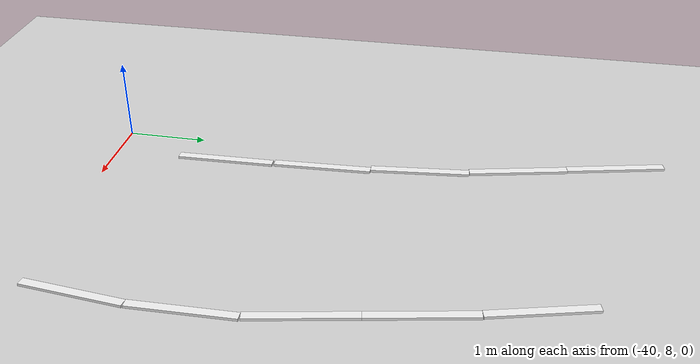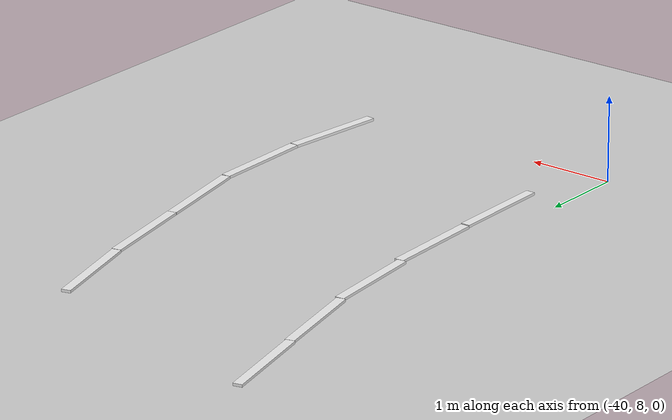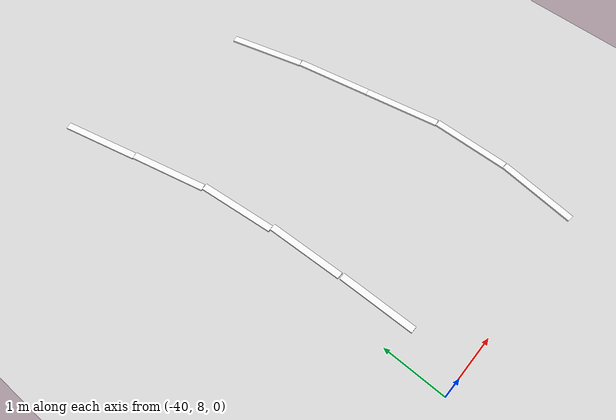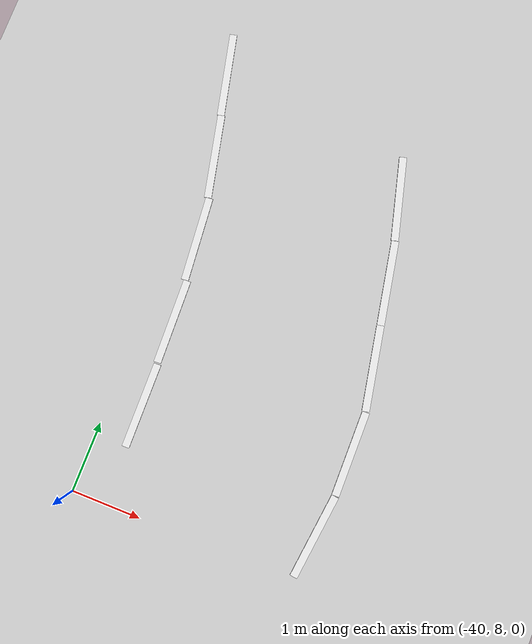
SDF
<sdf version="1.7">
 <world name="default">
  <model name="ground_plane">
   <static>1</static>
   <link name="link">
    <collision name="collision">
     <geometry><plane><normal>0 0 1</normal><size>100 100</size></plane></geometry>
     <surface><friction><ode><mu>100</mu><mu2>50</mu2></ode></friction></surface>
    </collision>
    <visual name="visual">
     <cast_shadows>0</cast_shadows>
     <geometry><plane><normal>0 0 1</normal><size>100 100</size></plane></geometry>
     <material>
      <script><uri>file://media/materials/scripts/gazebo.material</uri><name>Gazebo/Grey</name></script>
     </material>
    </visual>
   </link>
  </model>
  <model name="road_way_clone_clone_clone_0_clone_clone_clone_clone_0_clone_0_clone_0_clone_clone_clone_clone_clone_clone_clone_10_clone_2_clone_0_clone_1_clone_0_clone_0_clone_clone_0_clone_1_clone_clone_clone_clone_clone">
   <link name="link">
    <inertial>
     <mass>1</mass>
     <inertia>
      <ixx>0.166667</ixx>
      <ixy>0</ixy>
      <ixz>0</ixz>
      <iyy>0.166667</iyy>
      <iyz>0</iyz>
      <izz>0.166667</izz>
     </inertia>
    </inertial>
    <visual name="visual">
     <geometry><box><size>0.106644 1.22348 0.03129</size></box></geometry>
     <material>
      <script><name>Gazebo/White</name><uri>file://media/materials/scripts/gazebo.material</uri></script>
      <shader type="pixel"><normal_map>__default__</normal_map></shader>
      <ambient>1 1 1 1</ambient>
      <diffuse>1 1 1 1</diffuse>
      <specular>0 0 0 1</specular>
      <emissive>0 0 0 1</emissive>
     </material>
    </visual>
    <collision name="collision">
     <geometry><box><size>0.10644 1.22348 0.03129</size></box></geometry>
     <surface>
      <friction>
       <ode><mu>1</mu><mu2>1</mu2><fdir1>0 0 0</fdir1><slip1>0</slip1><slip2>0</slip2></ode>
       <torsional>
        <coefficient>1</coefficient>
        <patch_radius>0</patch_radius>
        <surface_radius>0</surface_radius>
        <use_patch_radius>1</use_patch_radius>
        <ode><slip>0</slip></ode>
       </torsional>
      </friction>
      <bounce><restitution_coefficient>0</restitution_coefficient><threshold>1e+06</threshold></bounce>
      <contact>
       <collide_without_contact>0</collide_without_contact>
       <collide_without_contact_bitmask>1</collide_without_contact_bitmask>
       <collide_bitmask>1</collide_bitmask>
       <ode>
        <soft_cfm>0</soft_cfm>
        <soft_erp>0.2</soft_erp>
        <kp>1e+13</kp>
        <kd>1</kd>
        <max_vel>0.01</max_vel>
        <min_depth>0</min_depth>
       </ode>
       <bullet>
        <split_impulse>1</split_impulse>
        <split_impulse_penetration_threshold>-0.01</split_impulse_penetration_threshold>
        <soft_cfm>0</soft_cfm>
        <soft_erp>0.2</soft_erp>
        <kp>1e+13</kp>
        <kd>1</kd>
       </bullet>
      </contact>
     </surface>
    </collision>
   </link>
   <static>0</static>
   <pose>-40.2197 14.3013 0.015638 1.1e-05 -0 -2.91411</pose>
  </model>
  <model name="road_way_clone_clone_clone_0_clone_clone_clone_clone_0_clone_0_clone_0_clone_clone_clone_clone_clone_clone_clone_10_clone_2_clone_0_clone_1_clone_0_clone_0_clone_clone_0_clone_1_clone_clone_clone_clone_clone_0_clone">
   <link name="link">
    <inertial>
     <mass>1</mass>
     <inertia>
      <ixx>0.166667</ixx>
      <ixy>0</ixy>
      <ixz>0</ixz>
      <iyy>0.166667</iyy>
      <iyz>0</iyz>
      <izz>0.166667</izz>
     </inertia>
    </inertial>
    <visual name="visual">
     <geometry><box><size>0.106644 1.22348 0.03129</size></box></geometry>
     <material>
      <script><name>Gazebo/White</name><uri>file://media/materials/scripts/gazebo.material</uri></script>
      <shader type="pixel"><normal_map>__default__</normal_map></shader>
      <ambient>1 1 1 1</ambient>
      <diffuse>1 1 1 1</diffuse>
      <specular>0 0 0 1</specular>
      <emissive>0 0 0 1</emissive>
     </material>
    </visual>
    <collision name="collision">
     <geometry><box><size>0.10644 1.22348 0.03129</size></box></geometry>
     <surface>
      <friction>
       <ode><mu>1</mu><mu2>1</mu2><fdir1>0 0 0</fdir1><slip1>0</slip1><slip2>0</slip2></ode>
       <torsional>
        <coefficient>1</coefficient>
        <patch_radius>0</patch_radius>
        <surface_radius>0</surface_radius>
        <use_patch_radius>1</use_patch_radius>
        <ode><slip>0</slip></ode>
       </torsional>
      </friction>
      <bounce><restitution_coefficient>0</restitution_coefficient><threshold>1e+06</threshold></bounce>
      <contact>
       <collide_without_contact>0</collide_without_contact>
       <collide_without_contact_bitmask>1</collide_without_contact_bitmask>
       <collide_bitmask>1</collide_bitmask>
       <ode>
        <soft_cfm>0</soft_cfm>
        <soft_erp>0.2</soft_erp>
        <kp>1e+13</kp>
        <kd>1</kd>
        <max_vel>0.01</max_vel>
        <min_depth>0</min_depth>
       </ode>
       <bullet>
        <split_impulse>1</split_impulse>
        <split_impulse_penetration_threshold>-0.01</split_impulse_penetration_threshold>
        <soft_cfm>0</soft_cfm>
        <soft_erp>0.2</soft_erp>
        <kp>1e+13</kp>
        <kd>1</kd>
       </bullet>
      </contact>
     </surface>
    </collision>
   </link>
   <static>0</static>
   <pose>-39.9366 13.1106 0.015638 1.1e-05 -0 -2.91982</pose>
  </model>
  <model name="road_way_clone_clone_clone_0_clone_clone_clone_clone_0_clone_0_clone_0_clone_clone_clone_clone_clone_clone_clone_10_clone_2_clone_0_clone_1_clone_0_clone_0_clone_clone_0_clone_1_clone_clone_clone_clone_clone_0">
   <link name="link">
    <inertial>
     <mass>1</mass>
     <inertia>
      <ixx>0.166667</ixx>
      <ixy>0</ixy>
      <ixz>0</ixz>
      <iyy>0.166667</iyy>
      <iyz>0</iyz>
      <izz>0.166667</izz>
     </inertia>
    </inertial>
    <visual name="visual">
     <geometry><box><size>0.106644 1.22348 0.03129</size></box></geometry>
     <material>
      <script><name>Gazebo/White</name><uri>file://media/materials/scripts/gazebo.material</uri></script>
      <shader type="pixel"><normal_map>__default__</normal_map></shader>
      <ambient>1 1 1 1</ambient>
      <diffuse>1 1 1 1</diffuse>
      <specular>0 0 0 1</specular>
      <emissive>0 0 0 1</emissive>
     </material>
    </visual>
    <collision name="collision">
     <geometry><box><size>0.10644 1.22348 0.03129</size></box></geometry>
     <surface>
      <friction>
       <ode><mu>1</mu><mu2>1</mu2><fdir1>0 0 0</fdir1><slip1>0</slip1><slip2>0</slip2></ode>
       <torsional>
        <coefficient>1</coefficient>
        <patch_radius>0</patch_radius>
        <surface_radius>0</surface_radius>
        <use_patch_radius>1</use_patch_radius>
        <ode><slip>0</slip></ode>
       </torsional>
      </friction>
      <bounce><restitution_coefficient>0</restitution_coefficient><threshold>1e+06</threshold></bounce>
      <contact>
       <collide_without_contact>0</collide_without_contact>
       <collide_without_contact_bitmask>1</collide_without_contact_bitmask>
       <collide_bitmask>1</collide_bitmask>
       <ode>
        <soft_cfm>0</soft_cfm>
        <soft_erp>0.2</soft_erp>
        <kp>1e+13</kp>
        <kd>1</kd>
        <max_vel>0.01</max_vel>
        <min_depth>0</min_depth>
       </ode>
       <bullet>
        <split_impulse>1</split_impulse>
        <split_impulse_penetration_threshold>-0.01</split_impulse_penetration_threshold>
        <soft_cfm>0</soft_cfm>
        <soft_erp>0.2</soft_erp>
        <kp>1e+13</kp>
        <kd>1</kd>
       </bullet>
      </contact>
     </surface>
    </collision>
   </link>
   <static>0</static>
   <pose>-37.2506 13.5066 0.015618 -1.3e-05 1e-06 -2.88082</pose>
  </model>
  <model name="road_way_clone_clone_clone_0_clone_clone_clone_clone_0_clone_0_clone_0_clone_clone_clone_clone_clone_clone_clone_10_clone_2_clone_0_clone_1_clone_0_clone_0_clone_clone_0_clone_1_clone_clone_clone_clone_clone_0_clone_clone">
   <link name="link">
    <inertial>
     <mass>1</mass>
     <inertia>
      <ixx>0.166667</ixx>
      <ixy>0</ixy>
      <ixz>0</ixz>
      <iyy>0.166667</iyy>
      <iyz>0</iyz>
      <izz>0.166667</izz>
     </inertia>
    </inertial>
    <visual name="visual">
     <geometry><box><size>0.106644 1.22348 0.03129</size></box></geometry>
     <material>
      <script><name>Gazebo/White</name><uri>file://media/materials/scripts/gazebo.material</uri></script>
      <shader type="pixel"><normal_map>__default__</normal_map></shader>
      <ambient>1 1 1 1</ambient>
      <diffuse>1 1 1 1</diffuse>
      <specular>0 0 0 1</specular>
      <emissive>0 0 0 1</emissive>
     </material>
    </visual>
    <collision name="collision">
     <geometry><box><size>0.10644 1.22348 0.03129</size></box></geometry>
     <surface>
      <friction>
       <ode><mu>1</mu><mu2>1</mu2><fdir1>0 0 0</fdir1><slip1>0</slip1><slip2>0</slip2></ode>
       <torsional>
        <coefficient>1</coefficient>
        <patch_radius>0</patch_radius>
        <surface_radius>0</surface_radius>
        <use_patch_radius>1</use_patch_radius>
        <ode><slip>0</slip></ode>
       </torsional>
      </friction>
      <bounce><restitution_coefficient>0</restitution_coefficient><threshold>1e+06</threshold></bounce>
      <contact>
       <collide_without_contact>0</collide_without_contact>
       <collide_without_contact_bitmask>1</collide_without_contact_bitmask>
       <collide_bitmask>1</collide_bitmask>
       <ode>
        <soft_cfm>0</soft_cfm>
        <soft_erp>0.2</soft_erp>
        <kp>1e+13</kp>
        <kd>1</kd>
        <max_vel>0.01</max_vel>
        <min_depth>0</min_depth>
       </ode>
       <bullet>
        <split_impulse>1</split_impulse>
        <split_impulse_penetration_threshold>-0.01</split_impulse_penetration_threshold>
        <soft_cfm>0</soft_cfm>
        <soft_erp>0.2</soft_erp>
        <kp>1e+13</kp>
        <kd>1</kd>
       </bullet>
      </contact>
     </surface>
    </collision>
   </link>
   <static>0</static>
   <pose>-39.7195 11.9033 0.015638 1.1e-05 -0 -3.0482</pose>
  </model>
  <model name="road_way_clone_clone_clone_0_clone_clone_clone_clone_0_clone_0_clone_0_clone_clone_clone_clone_clone_clone_clone_10_clone_2_clone_0_clone_1_clone_0_clone_0_clone_clone_0_clone_1_clone_clone_clone_clone_clone_0_clone_0">
   <link name="link">
    <inertial>
     <mass>1</mass>
     <inertia>
      <ixx>0.166667</ixx>
      <ixy>0</ixy>
      <ixz>0</ixz>
      <iyy>0.166667</iyy>
      <iyz>0</iyz>
      <izz>0.166667</izz>
     </inertia>
    </inertial>
    <visual name="visual">
     <geometry><box><size>0.106644 1.22348 0.03129</size></box></geometry>
     <material>
      <script><name>Gazebo/White</name><uri>file://media/materials/scripts/gazebo.material</uri></script>
      <shader type="pixel"><normal_map>__default__</normal_map></shader>
      <ambient>1 1 1 1</ambient>
      <diffuse>1 1 1 1</diffuse>
      <specular>0 0 0 1</specular>
      <emissive>0 0 0 1</emissive>
     </material>
    </visual>
    <collision name="collision">
     <geometry><box><size>0.10644 1.22348 0.03129</size></box></geometry>
     <surface>
      <friction>
       <ode><mu>1</mu><mu2>1</mu2><fdir1>0 0 0</fdir1><slip1>0</slip1><slip2>0</slip2></ode>
       <torsional>
        <coefficient>1</coefficient>
        <patch_radius>0</patch_radius>
        <surface_radius>0</surface_radius>
        <use_patch_radius>1</use_patch_radius>
        <ode><slip>0</slip></ode>
       </torsional>
      </friction>
      <bounce><restitution_coefficient>0</restitution_coefficient><threshold>1e+06</threshold></bounce>
      <contact>
       <collide_without_contact>0</collide_without_contact>
       <collide_without_contact_bitmask>1</collide_without_contact_bitmask>
       <collide_bitmask>1</collide_bitmask>
       <ode>
        <soft_cfm>0</soft_cfm>
        <soft_erp>0.2</soft_erp>
        <kp>1e+13</kp>
        <kd>1</kd>
        <max_vel>0.01</max_vel>
        <min_depth>0</min_depth>
       </ode>
       <bullet>
        <split_impulse>1</split_impulse>
        <split_impulse_penetration_threshold>-0.01</split_impulse_penetration_threshold>
        <soft_cfm>0</soft_cfm>
        <soft_erp>0.2</soft_erp>
        <kp>1e+13</kp>
        <kd>1</kd>
       </bullet>
      </contact>
     </surface>
    </collision>
   </link>
   <static>0</static>
   <pose>-36.9687 12.3132 0.015635 -1e-06 -1e-06 -2.95126</pose>
  </model>
  <model name="road_way_clone_clone_clone_0_clone_clone_clone_clone_0_clone_0_clone_0_clone_clone_clone_clone_clone_clone_clone_10_clone_2_clone_0_clone_1_clone_0_clone_0_clone_clone_0_clone_1_clone_clone_clone_clone_clone_0_clone_0_clone">
   <link name="link">
    <inertial>
     <mass>1</mass>
     <inertia>
      <ixx>0.166667</ixx>
      <ixy>0</ixy>
      <ixz>0</ixz>
      <iyy>0.166667</iyy>
      <iyz>0</iyz>
      <izz>0.166667</izz>
     </inertia>
    </inertial>
    <visual name="visual">
     <geometry><box><size>0.106644 1.22348 0.03129</size></box></geometry>
     <material>
      <script><name>Gazebo/White</name><uri>file://media/materials/scripts/gazebo.material</uri></script>
      <shader type="pixel"><normal_map>__default__</normal_map></shader>
      <ambient>1 1 1 1</ambient>
      <diffuse>1 1 1 1</diffuse>
      <specular>0 0 0 1</specular>
      <emissive>0 0 0 1</emissive>
     </material>
    </visual>
    <collision name="collision">
     <geometry><box><size>0.10644 1.22348 0.03129</size></box></geometry>
     <surface>
      <friction>
       <ode><mu>1</mu><mu2>1</mu2><fdir1>0 0 0</fdir1><slip1>0</slip1><slip2>0</slip2></ode>
       <torsional>
        <coefficient>1</coefficient>
        <patch_radius>0</patch_radius>
        <surface_radius>0</surface_radius>
        <use_patch_radius>1</use_patch_radius>
        <ode><slip>0</slip></ode>
       </torsional>
      </friction>
      <bounce><restitution_coefficient>0</restitution_coefficient><threshold>1e+06</threshold></bounce>
      <contact>
       <collide_without_contact>0</collide_without_contact>
       <collide_without_contact_bitmask>1</collide_without_contact_bitmask>
       <collide_bitmask>1</collide_bitmask>
       <ode>
        <soft_cfm>0</soft_cfm>
        <soft_erp>0.2</soft_erp>
        <kp>1e+13</kp>
        <kd>1</kd>
        <max_vel>0.01</max_vel>
        <min_depth>0</min_depth>
       </ode>
       <bullet>
        <split_impulse>1</split_impulse>
        <split_impulse_penetration_threshold>-0.01</split_impulse_penetration_threshold>
        <soft_cfm>0</soft_cfm>
        <soft_erp>0.2</soft_erp>
        <kp>1e+13</kp>
        <kd>1</kd>
       </bullet>
      </contact>
     </surface>
    </collision>
   </link>
   <static>0</static>
   <pose>-36.7382 11.1116 0.015638 -1.1e-05 -0 -2.95128</pose>
  </model>
  <model name="road_way_clone_clone_clone_0_clone_clone_clone_clone_0_clone_0_clone_0_clone_clone_clone_clone_clone_clone_clone_10_clone_2_clone_0_clone_1_clone_0_clone_0_clone_clone_0_clone_1_clone_clone_clone_clone_clone_0_clone_clone_clone">
   <link name="link">
    <inertial>
     <mass>1</mass>
     <inertia>
      <ixx>0.166667</ixx>
      <ixy>0</ixy>
      <ixz>0</ixz>
      <iyy>0.166667</iyy>
      <iyz>0</iyz>
      <izz>0.166667</izz>
     </inertia>
    </inertial>
    <visual name="visual">
     <geometry><box><size>0.106644 1.22348 0.03129</size></box></geometry>
     <material>
      <script><name>Gazebo/White</name><uri>file://media/materials/scripts/gazebo.material</uri></script>
      <shader type="pixel"><normal_map>__default__</normal_map></shader>
      <ambient>1 1 1 1</ambient>
      <diffuse>1 1 1 1</diffuse>
      <specular>0 0 0 1</specular>
      <emissive>0 0 0 1</emissive>
     </material>
    </visual>
    <collision name="collision">
     <geometry><box><size>0.10644 1.22348 0.03129</size></box></geometry>
     <surface>
      <friction>
       <ode><mu>1</mu><mu2>1</mu2><fdir1>0 0 0</fdir1><slip1>0</slip1><slip2>0</slip2></ode>
       <torsional>
        <coefficient>1</coefficient>
        <patch_radius>0</patch_radius>
        <surface_radius>0</surface_radius>
        <use_patch_radius>1</use_patch_radius>
        <ode><slip>0</slip></ode>
       </torsional>
      </friction>
      <bounce><restitution_coefficient>0</restitution_coefficient><threshold>1e+06</threshold></bounce>
      <contact>
       <collide_without_contact>0</collide_without_contact>
       <collide_without_contact_bitmask>1</collide_without_contact_bitmask>
       <collide_bitmask>1</collide_bitmask>
       <ode>
        <soft_cfm>0</soft_cfm>
        <soft_erp>0.2</soft_erp>
        <kp>1e+13</kp>
        <kd>1</kd>
        <max_vel>0.01</max_vel>
        <min_depth>0</min_depth>
       </ode>
       <bullet>
        <split_impulse>1</split_impulse>
        <split_impulse_penetration_threshold>-0.01</split_impulse_penetration_threshold>
        <soft_cfm>0</soft_cfm>
        <soft_erp>0.2</soft_erp>
        <kp>1e+13</kp>
        <kd>1</kd>
       </bullet>
      </contact>
     </surface>
    </collision>
   </link>
   <static>0</static>
   <pose>-39.6033 10.6832 0.015638 1.1e-05 -0 -3.10771</pose>
  </model>
  <model name="road_way_clone_clone_clone_0_clone_clone_clone_clone_0_clone_0_clone_0_clone_clone_clone_clone_clone_clone_clone_10_clone_2_clone_0_clone_1_clone_0_clone_0_clone_clone_0_clone_1_clone_clone_clone_clone_clone_0_clone_0_clone_clone">
   <link name="link">
    <inertial>
     <mass>1</mass>
     <inertia>
      <ixx>0.166667</ixx>
      <ixy>0</ixy>
      <ixz>0</ixz>
      <iyy>0.166667</iyy>
      <iyz>0</iyz>
      <izz>0.166667</izz>
     </inertia>
    </inertial>
    <visual name="visual">
     <geometry><box><size>0.106644 1.22348 0.03129</size></box></geometry>
     <material>
      <script><name>Gazebo/White</name><uri>file://media/materials/scripts/gazebo.material</uri></script>
      <shader type="pixel"><normal_map>__default__</normal_map></shader>
      <ambient>1 1 1 1</ambient>
      <diffuse>1 1 1 1</diffuse>
      <specular>0 0 0 1</specular>
      <emissive>0 0 0 1</emissive>
     </material>
    </visual>
    <collision name="collision">
     <geometry><box><size>0.10644 1.22348 0.03129</size></box></geometry>
     <surface>
      <friction>
       <ode><mu>1</mu><mu2>1</mu2><fdir1>0 0 0</fdir1><slip1>0</slip1><slip2>0</slip2></ode>
       <torsional>
        <coefficient>1</coefficient>
        <patch_radius>0</patch_radius>
        <surface_radius>0</surface_radius>
        <use_patch_radius>1</use_patch_radius>
        <ode><slip>0</slip></ode>
       </torsional>
      </friction>
      <bounce><restitution_coefficient>0</restitution_coefficient><threshold>1e+06</threshold></bounce>
      <contact>
       <collide_without_contact>0</collide_without_contact>
       <collide_without_contact_bitmask>1</collide_without_contact_bitmask>
       <collide_bitmask>1</collide_bitmask>
       <ode>
        <soft_cfm>0</soft_cfm>
        <soft_erp>0.2</soft_erp>
        <kp>1e+13</kp>
        <kd>1</kd>
        <max_vel>0.01</max_vel>
        <min_depth>0</min_depth>
       </ode>
       <bullet>
        <split_impulse>1</split_impulse>
        <split_impulse_penetration_threshold>-0.01</split_impulse_penetration_threshold>
        <soft_cfm>0</soft_cfm>
        <soft_erp>0.2</soft_erp>
        <kp>1e+13</kp>
        <kd>1</kd>
       </bullet>
      </contact>
     </surface>
    </collision>
   </link>
   <static>0</static>
   <pose>-36.6073 9.89127 0.015599 -1.1e-05 -1e-06 -3.13175</pose>
  </model>
  <model name="road_way_clone_clone_clone_0_clone_clone_clone_clone_0_clone_0_clone_0_clone_clone_clone_clone_clone_clone_clone_10_clone_2_clone_0_clone_1_clone_0_clone_0_clone_clone_0_clone_1_clone_clone_clone_clone_clone_0_clone_clone_clone_clone">
   <link name="link">
    <inertial>
     <mass>1</mass>
     <inertia>
      <ixx>0.166667</ixx>
      <ixy>0</ixy>
      <ixz>0</ixz>
      <iyy>0.166667</iyy>
      <iyz>0</iyz>
      <izz>0.166667</izz>
     </inertia>
    </inertial>
    <visual name="visual">
     <geometry><box><size>0.106644 1.22348 0.03129</size></box></geometry>
     <material>
      <script><name>Gazebo/White</name><uri>file://media/materials/scripts/gazebo.material</uri></script>
      <shader type="pixel"><normal_map>__default__</normal_map></shader>
      <ambient>1 1 1 1</ambient>
      <diffuse>1 1 1 1</diffuse>
      <specular>0 0 0 1</specular>
      <emissive>0 0 0 1</emissive>
     </material>
    </visual>
    <collision name="collision">
     <geometry><box><size>0.10644 1.22348 0.03129</size></box></geometry>
     <surface>
      <friction>
       <ode><mu>1</mu><mu2>1</mu2><fdir1>0 0 0</fdir1><slip1>0</slip1><slip2>0</slip2></ode>
       <torsional>
        <coefficient>1</coefficient>
        <patch_radius>0</patch_radius>
        <surface_radius>0</surface_radius>
        <use_patch_radius>1</use_patch_radius>
        <ode><slip>0</slip></ode>
       </torsional>
      </friction>
      <bounce><restitution_coefficient>0</restitution_coefficient><threshold>1e+06</threshold></bounce>
      <contact>
       <collide_without_contact>0</collide_without_contact>
       <collide_without_contact_bitmask>1</collide_without_contact_bitmask>
       <collide_bitmask>1</collide_bitmask>
       <ode>
        <soft_cfm>0</soft_cfm>
        <soft_erp>0.2</soft_erp>
        <kp>1e+13</kp>
        <kd>1</kd>
        <max_vel>0.01</max_vel>
        <min_depth>0</min_depth>
       </ode>
       <bullet>
        <split_impulse>1</split_impulse>
        <split_impulse_penetration_threshold>-0.01</split_impulse_penetration_threshold>
        <soft_cfm>0</soft_cfm>
        <soft_erp>0.2</soft_erp>
        <kp>1e+13</kp>
        <kd>1</kd>
       </bullet>
      </contact>
     </surface>
    </collision>
   </link>
   <static>0</static>
   <pose>-39.5596 9.43981 0.015638 1.1e-05 -0 -3.1257</pose>
  </model>
  <model name="road_way_clone_clone_clone_0_clone_clone_clone_clone_0_clone_0_clone_0_clone_clone_clone_clone_clone_clone_clone_10_clone_2_clone_0_clone_1_clone_0_clone_0_clone_clone_0_clone_1_clone_clone_clone_clone_clone_0_clone_clone_clone_clone_clone">
   <link name="link">
    <inertial>
     <mass>1</mass>
     <inertia>
      <ixx>0.166667</ixx>
      <ixy>0</ixy>
      <ixz>0</ixz>
      <iyy>0.166667</iyy>
      <iyz>0</iyz>
      <izz>0.166667</izz>
     </inertia>
    </inertial>
    <visual name="visual">
     <geometry><box><size>0.106644 1.22348 0.03129</size></box></geometry>
     <material>
      <script><name>Gazebo/White</name><uri>file://media/materials/scripts/gazebo.material</uri></script>
      <shader type="pixel"><normal_map>__default__</normal_map></shader>
      <ambient>1 1 1 1</ambient>
      <diffuse>1 1 1 1</diffuse>
      <specular>0 0 0 1</specular>
      <emissive>0 0 0 1</emissive>
     </material>
    </visual>
    <collision name="collision">
     <geometry><box><size>0.10644 1.22348 0.03129</size></box></geometry>
     <surface>
      <friction>
       <ode><mu>1</mu><mu2>1</mu2><fdir1>0 0 0</fdir1><slip1>0</slip1><slip2>0</slip2></ode>
       <torsional>
        <coefficient>1</coefficient>
        <patch_radius>0</patch_radius>
        <surface_radius>0</surface_radius>
        <use_patch_radius>1</use_patch_radius>
        <ode><slip>0</slip></ode>
       </torsional>
      </friction>
      <bounce><restitution_coefficient>0</restitution_coefficient><threshold>1e+06</threshold></bounce>
      <contact>
       <collide_without_contact>0</collide_without_contact>
       <collide_without_contact_bitmask>1</collide_without_contact_bitmask>
       <collide_bitmask>1</collide_bitmask>
       <ode>
        <soft_cfm>0</soft_cfm>
        <soft_erp>0.2</soft_erp>
        <kp>1e+13</kp>
        <kd>1</kd>
        <max_vel>0.01</max_vel>
        <min_depth>0</min_depth>
       </ode>
       <bullet>
        <split_impulse>1</split_impulse>
        <split_impulse_penetration_threshold>-0.01</split_impulse_penetration_threshold>
        <soft_cfm>0</soft_cfm>
        <soft_erp>0.2</soft_erp>
        <kp>1e+13</kp>
        <kd>1</kd>
       </bullet>
      </contact>
     </surface>
    </collision>
   </link>
   <static>0</static>
   <pose>-36.6715 8.66535 0.015638 1.1e-05 -0 3.02195</pose>
  </model>
 </world>
</sdf>
